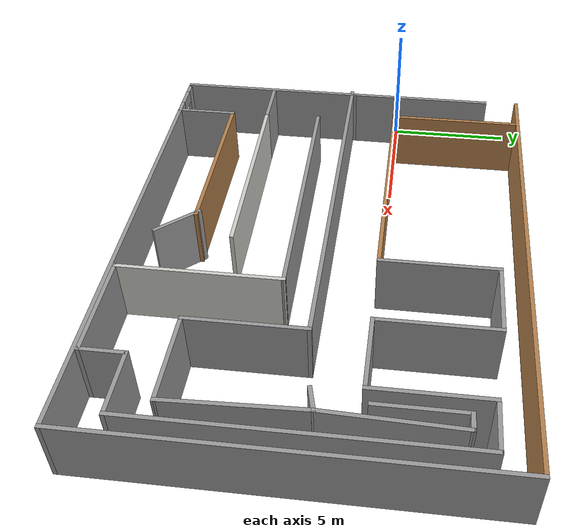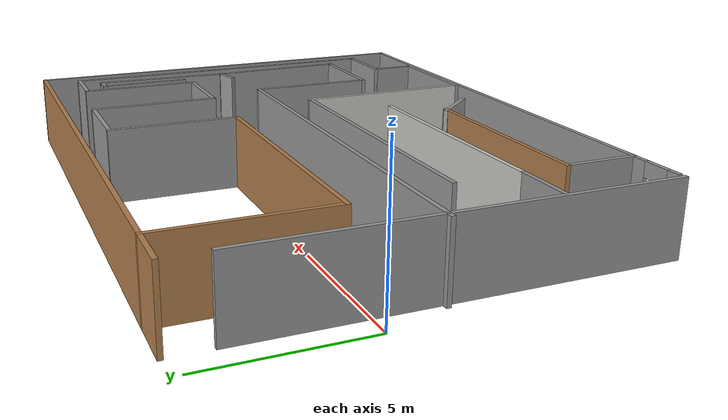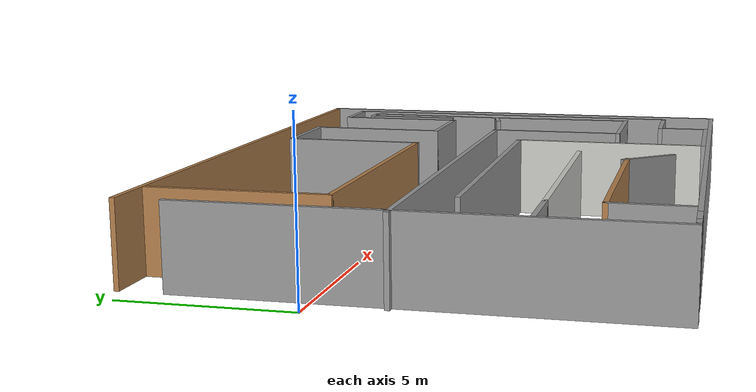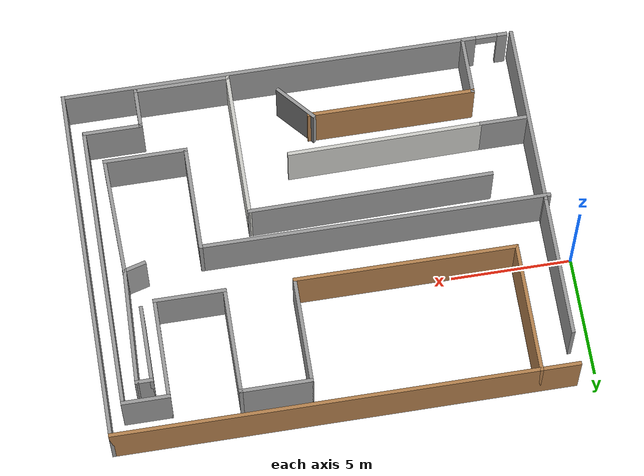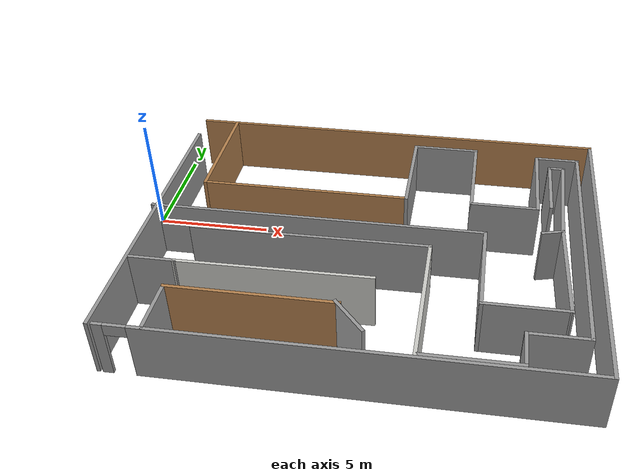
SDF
<?xml version='1.0'?>
<sdf version='1.7'>
  <model name='maze'>
    <pose>9.89427 -2.12138 0 0 -0 0</pose>
    <link name='Wall_0'>
      <collision name='Wall_0_Collision'>
        <geometry>
          <box>
            <size>6 0.15 2.5</size>
          </box>
        </geometry>
        <pose>0 0 1.25 0 -0 0</pose>
      </collision>
      <visual name='Wall_0_Visual'>
        <pose>0 0 1.25 0 -0 0</pose>
        <geometry>
          <box>
            <size>6 0.15 2.5</size>
          </box>
        </geometry>
        <material>
          <script>
            <uri>file://media/materials/scripts/gazebo.material</uri>
            <name>Gazebo/Grey</name>
          </script>
          <ambient>1 1 1 1</ambient>
        </material>
        <meta>
          <layer>0</layer>
        </meta>
      </visual>
      <pose>-9.03427 3.10638 0 0 -0 1.5708</pose>
    </link>
    <link name='Wall_12'>
      <collision name='Wall_12_Collision'>
        <geometry>
          <box>
            <size>5.5 0.15 2.5</size>
          </box>
        </geometry>
        <pose>0 0 1.25 0 -0 0</pose>
      </collision>
      <visual name='Wall_12_Visual'>
        <pose>0 0 1.25 0 -0 0</pose>
        <geometry>
          <box>
            <size>5.5 0.15 2.5</size>
          </box>
        </geometry>
        <material>
          <script>
            <uri>file://media/materials/scripts/gazebo.material</uri>
            <name>Gazebo/Wood</name>
          </script>
          <ambient>1 1 1 1</ambient>
        </material>
        <meta>
          <layer>0</layer>
        </meta>
      </visual>
      <pose>-7.48469 4.75 0 0 -0 -1.5708</pose>
    </link>
    <link name='Wall_13'>
      <collision name='Wall_13_Collision'>
        <geometry>
          <box>
            <size>9.25 0.15 2.5</size>
          </box>
        </geometry>
        <pose>0 0 1.25 0 -0 0</pose>
      </collision>
      <visual name='Wall_13_Visual'>
        <pose>0 0 1.25 0 -0 0</pose>
        <geometry>
          <box>
            <size>9.25 0.15 2.5</size>
          </box>
        </geometry>
        <material>
          <script>
            <uri>file://media/materials/scripts/gazebo.material</uri>
            <name>Gazebo/Wood</name>
          </script>
          <ambient>1 1 1 1</ambient>
        </material>
        <meta>
          <layer>0</layer>
        </meta>
      </visual>
      <pose>-2.93469 2.075 0 0 -0 0</pose>
    </link>
    <link name='Wall_14'>
      <collision name='Wall_14_Collision'>
        <geometry>
          <box>
            <size>4.5 0.15 2.5</size>
          </box>
        </geometry>
        <pose>0 0 1.25 0 -0 0</pose>
      </collision>
      <visual name='Wall_14_Visual'>
        <pose>0 0 1.25 0 -0 0</pose>
        <geometry>
          <box>
            <size>4.5 0.15 2.5</size>
          </box>
        </geometry>
        <material>
          <script>
            <uri>file://media/materials/scripts/gazebo.material</uri>
            <name>Gazebo/Grey</name>
          </script>
          <ambient>1 1 1 1</ambient>
        </material>
        <meta>
          <layer>0</layer>
        </meta>
      </visual>
      <pose>1.61531 4.25 0 0 -0 1.5708</pose>
    </link>
    <link name='Wall_15'>
      <collision name='Wall_15_Collision'>
        <geometry>
          <box>
            <size>3 0.15 2.5</size>
          </box>
        </geometry>
        <pose>0 0 1.25 0 -0 0</pose>
      </collision>
      <visual name='Wall_15_Visual'>
        <pose>0 0 1.25 0 -0 0</pose>
        <geometry>
          <box>
            <size>3 0.15 2.5</size>
          </box>
        </geometry>
        <material>
          <script>
            <uri>file://media/materials/scripts/gazebo.material</uri>
            <name>Gazebo/Grey</name>
          </script>
          <ambient>1 1 1 1</ambient>
        </material>
        <meta>
          <layer>0</layer>
        </meta>
      </visual>
      <pose>3.04031 6.425 0 0 -0 0</pose>
    </link>
    <link name='Wall_16'>
      <collision name='Wall_16_Collision'>
        <geometry>
          <box>
            <size>4.5 0.15 2.5</size>
          </box>
        </geometry>
        <pose>0 0 1.25 0 -0 0</pose>
      </collision>
      <visual name='Wall_16_Visual'>
        <pose>0 0 1.25 0 -0 0</pose>
        <geometry>
          <box>
            <size>4.5 0.15 2.5</size>
          </box>
        </geometry>
        <material>
          <script>
            <uri>file://media/materials/scripts/gazebo.material</uri>
            <name>Gazebo/Grey</name>
          </script>
          <ambient>1 1 1 1</ambient>
        </material>
        <meta>
          <layer>0</layer>
        </meta>
      </visual>
      <pose>4.46531 4.25 0 0 -0 -1.5708</pose>
    </link>
    <link name='Wall_17'>
      <collision name='Wall_17_Collision'>
        <geometry>
          <box>
            <size>3 0.15 2.5</size>
          </box>
        </geometry>
        <pose>0 0 1.25 0 -0 0</pose>
      </collision>
      <visual name='Wall_17_Visual'>
        <pose>0 0 1.25 0 -0 0</pose>
        <geometry>
          <box>
            <size>3 0.15 2.5</size>
          </box>
        </geometry>
        <material>
          <script>
            <uri>file://media/materials/scripts/gazebo.material</uri>
            <name>Gazebo/Grey</name>
          </script>
          <ambient>1 1 1 1</ambient>
        </material>
        <meta>
          <layer>0</layer>
        </meta>
      </visual>
      <pose>5.89031 2.075 0 0 -0 0</pose>
    </link>
    <link name='Wall_18'>
      <collision name='Wall_18_Collision'>
        <geometry>
          <box>
            <size>4.25 0.15 2.5</size>
          </box>
        </geometry>
        <pose>0 0 1.25 0 -0 0</pose>
      </collision>
      <visual name='Wall_18_Visual'>
        <pose>0 0 1.25 0 -0 0</pose>
        <geometry>
          <box>
            <size>4.25 0.15 2.5</size>
          </box>
        </geometry>
        <material>
          <script>
            <uri>file://media/materials/scripts/gazebo.material</uri>
            <name>Gazebo/Grey</name>
          </script>
          <ambient>1 1 1 1</ambient>
        </material>
        <meta>
          <layer>0</layer>
        </meta>
      </visual>
      <pose>7.31531 4.125 0 0 -0 1.5708</pose>
    </link>
    <link name='Wall_19'>
      <collision name='Wall_19_Collision'>
        <geometry>
          <box>
            <size>2 0.15 2.5</size>
          </box>
        </geometry>
        <pose>0 0 1.25 0 -0 0</pose>
      </collision>
      <visual name='Wall_19_Visual'>
        <pose>0 0 1.25 0 -0 0</pose>
        <geometry>
          <box>
            <size>2 0.15 2.5</size>
          </box>
        </geometry>
        <material>
          <script>
            <uri>file://media/materials/scripts/gazebo.material</uri>
            <name>Gazebo/Grey</name>
          </script>
          <ambient>1 1 1 1</ambient>
        </material>
        <meta>
          <layer>0</layer>
        </meta>
      </visual>
      <pose>8.24031 6.175 0 0 -0 0</pose>
    </link>
    <link name='Wall_20'>
      <collision name='Wall_20_Collision'>
        <geometry>
          <box>
            <size>12 0.15 2.5</size>
          </box>
        </geometry>
        <pose>0 0 1.25 0 -0 0</pose>
      </collision>
      <visual name='Wall_20_Visual'>
        <pose>0 0 1.25 0 -0 0</pose>
        <geometry>
          <box>
            <size>12 0.15 2.5</size>
          </box>
        </geometry>
        <material>
          <script>
            <uri>file://media/materials/scripts/gazebo.material</uri>
            <name>Gazebo/Grey</name>
          </script>
          <ambient>1 1 1 1</ambient>
        </material>
        <meta>
          <layer>0</layer>
        </meta>
      </visual>
      <pose>9.16531 0.25 0 0 -0 -1.5708</pose>
    </link>
    <link name='Wall_21'>
      <collision name='Wall_21_Collision'>
        <geometry>
          <box>
            <size>2.5 0.15 2.5</size>
          </box>
        </geometry>
        <pose>0 0 1.25 0 -0 0</pose>
      </collision>
      <visual name='Wall_21_Visual'>
        <pose>0 0 1.25 0 -0 0</pose>
        <geometry>
          <box>
            <size>2.5 0.15 2.5</size>
          </box>
        </geometry>
        <material>
          <script>
            <uri>file://media/materials/scripts/gazebo.material</uri>
            <name>Gazebo/Grey</name>
          </script>
          <ambient>1 1 1 1</ambient>
        </material>
        <meta>
          <layer>0</layer>
        </meta>
      </visual>
      <pose>7.99031 -5.675 0 0 -0 3.14159</pose>
    </link>
    <link name='Wall_24'>
      <collision name='Wall_24_Collision'>
        <geometry>
          <box>
            <size>3.25 0.15 2.5</size>
          </box>
        </geometry>
        <pose>0 0 1.25 0 -0 0</pose>
      </collision>
      <visual name='Wall_24_Visual'>
        <pose>0 0 1.25 0 -0 0</pose>
        <geometry>
          <box>
            <size>3.25 0.15 2.5</size>
          </box>
        </geometry>
        <material>
          <script>
            <uri>file://media/materials/scripts/gazebo.material</uri>
            <name>Gazebo/Grey</name>
          </script>
          <ambient>1 1 1 1</ambient>
        </material>
        <meta>
          <layer>0</layer>
        </meta>
      </visual>
      <pose>7.89436 3.84865 0 0 -0 1.5708</pose>
    </link>
    <link name='Wall_25'>
      <collision name='Wall_25_Collision'>
        <geometry>
          <box>
            <size>0.75 0.15 2.5</size>
          </box>
        </geometry>
        <pose>0 0 1.25 0 -0 0</pose>
      </collision>
      <visual name='Wall_25_Visual'>
        <pose>0 0 1.25 0 -0 0</pose>
        <geometry>
          <box>
            <size>0.75 0.15 2.5</size>
          </box>
        </geometry>
        <material>
          <script>
            <uri>file://media/materials/scripts/gazebo.material</uri>
            <name>Gazebo/Grey</name>
          </script>
          <ambient>1 1 1 1</ambient>
        </material>
        <meta>
          <layer>0</layer>
        </meta>
      </visual>
      <pose>8.19435 5.39865 0 0 -0 0</pose>
    </link>
    <link name='Wall_26'>
      <collision name='Wall_26_Collision'>
        <geometry>
          <box>
            <size>4.94977 0.15 2.5</size>
          </box>
        </geometry>
        <pose>0 0 1.25 0 -0 0</pose>
      </collision>
      <visual name='Wall_26_Visual'>
        <pose>0 0 1.25 0 -0 0</pose>
        <geometry>
          <box>
            <size>4.94977 0.15 2.5</size>
          </box>
        </geometry>
        <material>
          <script>
            <uri>file://media/materials/scripts/gazebo.material</uri>
            <name>Gazebo/Grey</name>
          </script>
          <ambient>1 1 1 1</ambient>
        </material>
        <meta>
          <layer>0</layer>
        </meta>
      </visual>
      <pose>8.41298 3.00015 0 0 -0 -1.60471</pose>
    </link>
    <link name='Wall_27'>
      <collision name='Wall_27_Collision'>
        <geometry>
          <box>
            <size>1 0.15 2.5</size>
          </box>
        </geometry>
        <pose>0 0 1.25 0 -0 0</pose>
      </collision>
      <visual name='Wall_27_Visual'>
        <pose>0 0 1.25 0 -0 0</pose>
        <geometry>
          <box>
            <size>1 0.15 2.5</size>
          </box>
        </geometry>
        <material>
          <script>
            <uri>file://media/materials/scripts/gazebo.material</uri>
            <name>Gazebo/Grey</name>
          </script>
          <ambient>1 1 1 1</ambient>
        </material>
        <meta>
          <layer>0</layer>
        </meta>
      </visual>
      <pose>7.92109 0.491647 0 0 -0 -2.87979</pose>
    </link>
    <link name='Wall_29'>
      <collision name='Wall_29_Collision'>
        <geometry>
          <box>
            <size>5.05569 0.15 2.5</size>
          </box>
        </geometry>
        <pose>0 0 1.25 0 -0 0</pose>
      </collision>
      <visual name='Wall_29_Visual'>
        <pose>0 0 1.25 0 -0 0</pose>
        <geometry>
          <box>
            <size>5.05569 0.15 2.5</size>
          </box>
        </geometry>
        <material>
          <script>
            <uri>file://media/materials/scripts/gazebo.material</uri>
            <name>Gazebo/Grey</name>
          </script>
          <ambient>1 1 1 1</ambient>
        </material>
        <meta>
          <layer>0</layer>
        </meta>
      </visual>
      <pose>8.41298 -1.84985 0 0 -0 -1.53762</pose>
    </link>
    <link name='Wall_30'>
      <collision name='Wall_30_Collision'>
        <geometry>
          <box>
            <size>3.5 0.15 2.5</size>
          </box>
        </geometry>
        <pose>0 0 1.25 0 -0 0</pose>
      </collision>
      <visual name='Wall_30_Visual'>
        <pose>0 0 1.25 0 -0 0</pose>
        <geometry>
          <box>
            <size>3.5 0.15 2.5</size>
          </box>
        </geometry>
        <material>
          <script>
            <uri>file://media/materials/scripts/gazebo.material</uri>
            <name>Gazebo/Grey</name>
          </script>
          <ambient>1 1 1 1</ambient>
        </material>
        <meta>
          <layer>0</layer>
        </meta>
      </visual>
      <pose>6.81935 -4.30135 0 0 -0 3.14159</pose>
    </link>
    <link name='Wall_31'>
      <collision name='Wall_31_Collision'>
        <geometry>
          <box>
            <size>4.5 0.15 2.5</size>
          </box>
        </geometry>
        <pose>0 0 1.25 0 -0 0</pose>
      </collision>
      <visual name='Wall_31_Visual'>
        <pose>0 0 1.25 0 -0 0</pose>
        <geometry>
          <box>
            <size>4.5 0.15 2.5</size>
          </box>
        </geometry>
        <material>
          <script>
            <uri>file://media/materials/scripts/gazebo.material</uri>
            <name>Gazebo/Grey</name>
          </script>
          <ambient>1 1 1 1</ambient>
        </material>
        <meta>
          <layer>0</layer>
        </meta>
      </visual>
      <pose>5.14435 -2.12635 0 0 -0 1.5708</pose>
    </link>
    <link name='Wall_32'>
      <collision name='Wall_32_Collision'>
        <geometry>
          <box>
            <size>14.5 0.15 2.5</size>
          </box>
        </geometry>
        <pose>0 0 1.25 0 -0 0</pose>
      </collision>
      <visual name='Wall_32_Visual'>
        <pose>0 0 1.25 0 -0 0</pose>
        <geometry>
          <box>
            <size>14.5 0.15 2.5</size>
          </box>
        </geometry>
        <material>
          <script>
            <uri>file://media/materials/scripts/gazebo.material</uri>
            <name>Gazebo/Grey</name>
          </script>
          <ambient>1 1 1 1</ambient>
        </material>
        <meta>
          <layer>0</layer>
        </meta>
      </visual>
      <pose>-2.03065 0.048651 0 0 -0 3.14159</pose>
    </link>
    <link name='Wall_34'>
      <collision name='Wall_34_Collision'>
        <geometry>
          <box>
            <size>1.75 0.15 2.5</size>
          </box>
        </geometry>
        <pose>0 0 1.25 0 -0 0</pose>
      </collision>
      <visual name='Wall_34_Visual'>
        <pose>0 0 1.25 0 -0 0</pose>
        <geometry>
          <box>
            <size>1.75 0.15 2.5</size>
          </box>
        </geometry>
        <material>
          <script>
            <uri>file://media/materials/scripts/gazebo.material</uri>
            <name>Gazebo/Grey</name>
          </script>
          <ambient>1 1 1 1</ambient>
        </material>
        <meta>
          <layer>0</layer>
        </meta>
      </visual>
      <pose>6.81531 -6.475 0 0 -0 -1.5708</pose>
    </link>
    <link name='Wall_35'>
      <collision name='Wall_35_Collision'>
        <geometry>
          <box>
            <size>4 0.15 2.5</size>
          </box>
        </geometry>
        <pose>0 0 1.25 0 -0 0</pose>
      </collision>
      <visual name='Wall_35_Visual'>
        <pose>0 0 1.25 0 -0 0</pose>
        <geometry>
          <box>
            <size>4 0.15 2.5</size>
          </box>
        </geometry>
        <material>
          <script>
            <uri>file://media/materials/scripts/gazebo.material</uri>
            <name>Gazebo/Grey</name>
          </script>
          <ambient>1 1 1 1</ambient>
        </material>
        <meta>
          <layer>0</layer>
        </meta>
      </visual>
      <pose>4.89031 -7.275 0 0 -0 3.14159</pose>
    </link>
    <link name='Wall_36'>
      <collision name='Wall_36_Collision'>
        <geometry>
          <box>
            <size>6.25 0.15 2.5</size>
          </box>
        </geometry>
        <pose>0 0 1.25 0 -0 0</pose>
      </collision>
      <visual name='Wall_36_Visual'>
        <pose>0 0 1.25 0 -0 0</pose>
        <geometry>
          <box>
            <size>6.25 0.15 2.5</size>
          </box>
        </geometry>
        <material>
          <script>
            <uri>file://media/materials/scripts/gazebo.material</uri>
            <name>Gazebo/CeilingTiled</name>
          </script>
          <ambient>1 1 1 1</ambient>
        </material>
        <meta>
          <layer>0</layer>
        </meta>
      </visual>
      <pose>2.96531 -4.225 0 0 -0 1.5708</pose>
    </link>
    <link name='Wall_37'>
      <collision name='Wall_37_Collision'>
        <geometry>
          <box>
            <size>10.169 0.15 2.5</size>
          </box>
        </geometry>
        <pose>0 0 1.25 0 -0 0</pose>
      </collision>
      <visual name='Wall_37_Visual'>
        <pose>0 0 1.25 0 -0 0</pose>
        <geometry>
          <box>
            <size>10.169 0.15 2.5</size>
          </box>
        </geometry>
        <material>
          <script>
            <uri>file://media/materials/scripts/gazebo.material</uri>
            <name>Gazebo/Grey</name>
          </script>
          <ambient>1 1 1 1</ambient>
        </material>
        <meta>
          <layer>0</layer>
        </meta>
      </visual>
      <pose>-2.04401 -1.21568 0 0 -0 -3.13347</pose>
    </link>
    <link name='Wall_39'>
      <collision name='Wall_39_Collision'>
        <geometry>
          <box>
            <size>8.16904 0.15 2.5</size>
          </box>
        </geometry>
        <pose>0 0 1.25 0 -0 0</pose>
      </collision>
      <visual name='Wall_39_Visual'>
        <pose>0 0 1.25 0 -0 0</pose>
        <geometry>
          <box>
            <size>8.16904 0.15 2.5</size>
          </box>
        </geometry>
        <material>
          <script>
            <uri>file://media/materials/scripts/gazebo.material</uri>
            <name>Gazebo/CeilingTiled</name>
          </script>
          <ambient>1 1 1 1</ambient>
        </material>
        <meta>
          <layer>0</layer>
        </meta>
      </visual>
      <pose>-3.04401 -3.48432 0 0 -0 0.010147</pose>
    </link>
    <link name='Wall_4'>
      <collision name='Wall_4_Collision'>
        <geometry>
          <box>
            <size>19 0.15 2.5</size>
          </box>
        </geometry>
        <pose>0 0 1.25 0 -0 0</pose>
      </collision>
      <visual name='Wall_4_Visual'>
        <pose>0 0 1.25 0 -0 0</pose>
        <geometry>
          <box>
            <size>19 0.15 2.5</size>
          </box>
        </geometry>
        <material>
          <script>
            <uri>file://media/materials/scripts/gazebo.material</uri>
            <name>Gazebo/Wood</name>
          </script>
          <ambient>1 1 1 1</ambient>
        </material>
        <meta>
          <layer>0</layer>
        </meta>
      </visual>
      <pose>0.394266 7.425 0 0 -0 0</pose>
    </link>
    <link name='Wall_41'>
      <collision name='Wall_41_Collision'>
        <geometry>
          <box>
            <size>2.02339 0.15 2.5</size>
          </box>
        </geometry>
        <pose>0 0 1.25 0 -0 0</pose>
      </collision>
      <visual name='Wall_41_Visual'>
        <pose>0 0 1.25 0 -0 0</pose>
        <geometry>
          <box>
            <size>2.02339 0.15 2.5</size>
          </box>
        </geometry>
        <material>
          <script>
            <uri>file://media/materials/scripts/gazebo.material</uri>
            <name>Gazebo/Grey</name>
          </script>
          <ambient>1 1 1 1</ambient>
        </material>
        <meta>
          <layer>0</layer>
        </meta>
      </visual>
      <pose>0.344901 -5.67322 0 0 -0 2.29473</pose>
    </link>
    <link name='Wall_43'>
      <collision name='Wall_43_Collision'>
        <geometry>
          <box>
            <size>7 0.15 2.5</size>
          </box>
        </geometry>
        <pose>0 0 1.25 0 -0 0</pose>
      </collision>
      <visual name='Wall_43_Visual'>
        <pose>0 0 1.25 0 -0 0</pose>
        <geometry>
          <box>
            <size>7 0.15 2.5</size>
          </box>
        </geometry>
        <material>
          <script>
            <uri>file://media/materials/scripts/gazebo.material</uri>
            <name>Gazebo/Wood</name>
          </script>
          <ambient>1 1 1 1</ambient>
        </material>
        <meta>
          <layer>0</layer>
        </meta>
      </visual>
      <pose>-3.53776 -5.05282 0 0 -0 3.14159</pose>
    </link>
    <link name='Wall_45'>
      <collision name='Wall_45_Collision'>
        <geometry>
          <box>
            <size>2 0.15 2.5</size>
          </box>
        </geometry>
        <pose>0 0 1.25 0 -0 0</pose>
      </collision>
      <visual name='Wall_45_Visual'>
        <pose>0 0 1.25 0 -0 0</pose>
        <geometry>
          <box>
            <size>2 0.15 2.5</size>
          </box>
        </geometry>
        <material>
          <script>
            <uri>file://media/materials/scripts/gazebo.material</uri>
            <name>Gazebo/Grey</name>
          </script>
          <ambient>1 1 1 1</ambient>
        </material>
        <meta>
          <layer>0</layer>
        </meta>
      </visual>
      <pose>-7.97832 -3.525 0 0 -0 3.14159</pose>
    </link>
    <link name='Wall_47'>
      <collision name='Wall_47_Collision'>
        <geometry>
          <box>
            <size>2.5 0.15 2.5</size>
          </box>
        </geometry>
        <pose>0 0 1.25 0 -0 0</pose>
      </collision>
      <visual name='Wall_47_Visual'>
        <pose>0 0 1.25 0 -0 0</pose>
        <geometry>
          <box>
            <size>2.5 0.15 2.5</size>
          </box>
        </geometry>
        <material>
          <script>
            <uri>file://media/materials/scripts/gazebo.material</uri>
            <name>Gazebo/Grey</name>
          </script>
          <ambient>1 1 1 1</ambient>
        </material>
        <meta>
          <layer>0</layer>
        </meta>
      </visual>
      <pose>-6.96276 -6.22782 0 0 -0 -1.5708</pose>
    </link>
    <link name='Wall_5'>
      <collision name='Wall_5_Collision'>
        <geometry>
          <box>
            <size>15 0.15 2.5</size>
          </box>
        </geometry>
        <pose>0 0 1.25 0 -0 0</pose>
      </collision>
      <visual name='Wall_5_Visual'>
        <pose>0 0 1.25 0 -0 0</pose>
        <geometry>
          <box>
            <size>15 0.15 2.5</size>
          </box>
        </geometry>
        <material>
          <script>
            <uri>file://media/materials/scripts/gazebo.material</uri>
            <name>Gazebo/Grey</name>
          </script>
          <ambient>1 1 1 1</ambient>
        </material>
        <meta>
          <layer>0</layer>
        </meta>
      </visual>
      <pose>9.81927 0 0 0 -0 -1.5708</pose>
    </link>
    <link name='Wall_6'>
      <pose>0.519266 -7.425 0 0 -0 3.14159</pose>
      <visual name='Wall_6_Visual_0'>
        <pose>-0.666409 0 1.25 0 -0 0</pose>
        <geometry>
          <box>
            <size>17.4172 0.15 2.5</size>
          </box>
        </geometry>
        <material>
          <script>
            <uri>file://media/materials/scripts/gazebo.material</uri>
            <name>Gazebo/Grey</name>
          </script>
          <ambient>1 1 1 1</ambient>
        </material>
        <meta>
          <layer>0</layer>
        </meta>
      </visual>
      <collision name='Wall_6_Collision_0'>
        <geometry>
          <box>
            <size>17.4172 0.15 2.5</size>
          </box>
        </geometry>
        <pose>-0.666409 0 1.25 0 -0 0</pose>
      </collision>
      <visual name='Wall_6_Visual_1'>
        <pose>9.15859 0 1.25 0 -0 0</pose>
        <geometry>
          <box>
            <size>0.432818 0.15 2.5</size>
          </box>
        </geometry>
        <material>
          <script>
            <uri>file://media/materials/scripts/gazebo.material</uri>
            <name>Gazebo/Grey</name>
          </script>
          <ambient>1 1 1 1</ambient>
        </material>
        <meta>
          <layer>0</layer>
        </meta>
      </visual>
      <collision name='Wall_6_Collision_1'>
        <geometry>
          <box>
            <size>0.432818 0.15 2.5</size>
          </box>
        </geometry>
        <pose>9.15859 0 1.25 0 -0 0</pose>
      </collision>
      <visual name='Wall_6_Visual_2'>
        <pose>8.49218 0 2.25 0 -0 0</pose>
        <geometry>
          <box>
            <size>0.9 0.15 0.5</size>
          </box>
        </geometry>
        <material>
          <script>
            <uri>file://media/materials/scripts/gazebo.material</uri>
            <name>Gazebo/Grey</name>
          </script>
          <ambient>1 1 1 1</ambient>
        </material>
        <meta>
          <layer>0</layer>
        </meta>
      </visual>
      <collision name='Wall_6_Collision_2'>
        <geometry>
          <box>
            <size>0.9 0.15 0.5</size>
          </box>
        </geometry>
        <pose>8.49218 0 2.25 0 -0 0</pose>
      </collision>
    </link>
    <link name='Wall_8'>
      <collision name='Wall_8_Collision'>
        <geometry>
          <box>
            <size>7.75 0.15 2.5</size>
          </box>
        </geometry>
        <pose>0 0 1.25 0 -0 0</pose>
      </collision>
      <visual name='Wall_8_Visual'>
        <pose>0 0 1.25 0 -0 0</pose>
        <geometry>
          <box>
            <size>7.75 0.15 2.5</size>
          </box>
        </geometry>
        <material>
          <script>
            <uri>file://media/materials/scripts/gazebo.material</uri>
            <name>Gazebo/Grey</name>
          </script>
          <ambient>1 1 1 1</ambient>
        </material>
        <meta>
          <layer>0</layer>
        </meta>
      </visual>
      <pose>-9.03427 -3.61862 0 0 -0 -1.5708</pose>
    </link>
    <static>1</static>
  </model>
</sdf>
